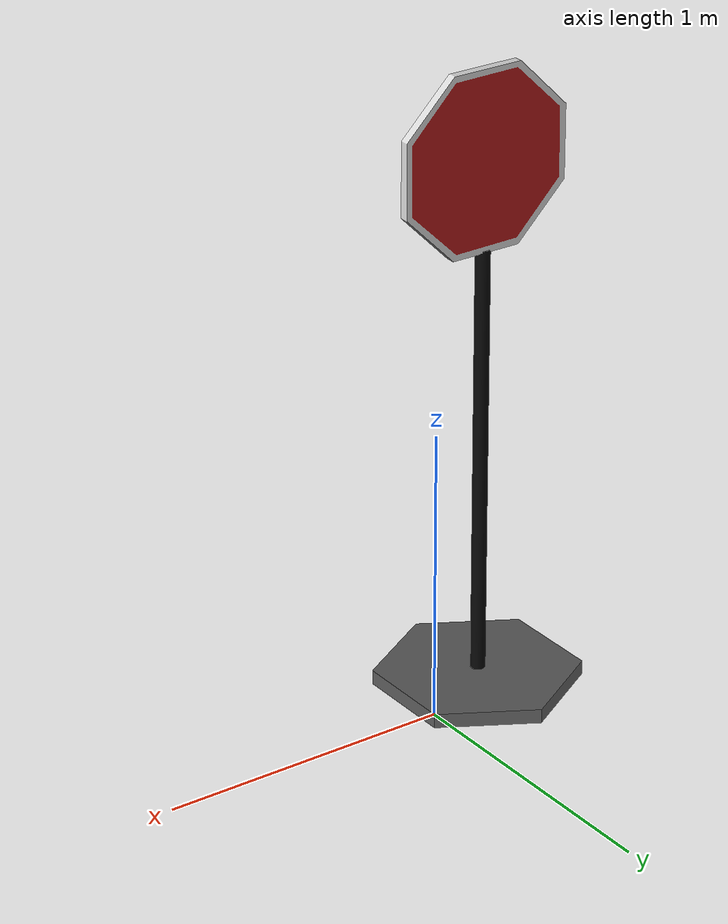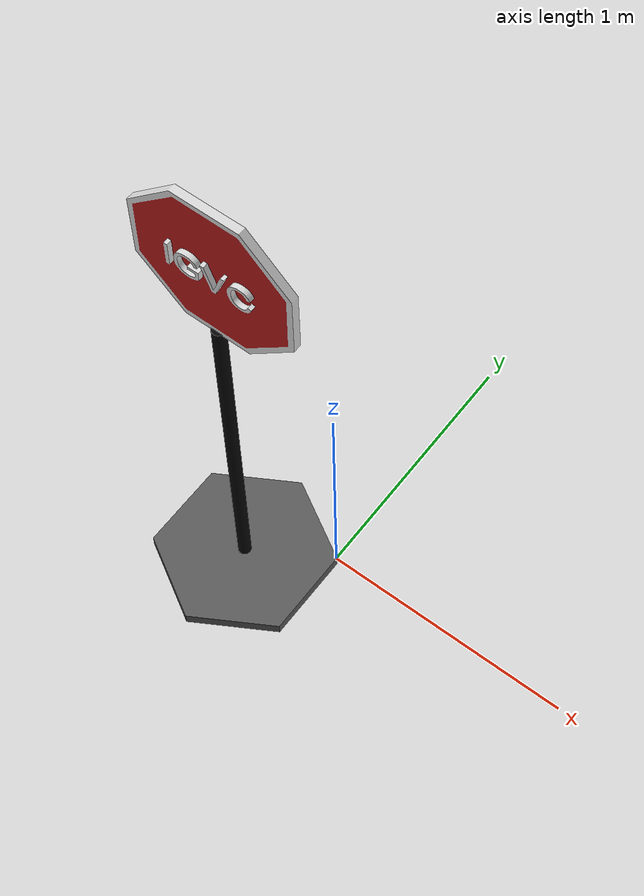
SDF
<?xml version='1.0'?>
<sdf version='1.4'>
  <model name='sign_stop'>
    <static>true</static>
    <link name="sign">
      <visual name="visual">
            <geometry>
                <mesh>
                    <uri>model://sign_igvc/materials/meshes/sign_igvc.dae</uri>
		    <scale>0.001 0.001 0.001</scale>
                </mesh>
            </geometry>
        </visual>
        <collision name="collision">
            <geometry>
                <mesh>
                    <uri>model://sign_igvc/materials/meshes/sign_igvc.dae</uri>
		    <scale>0.001 0.001 0.001</scale>
                </mesh>
            </geometry>
        </collision>
    </link>
  </model>
</sdf>
